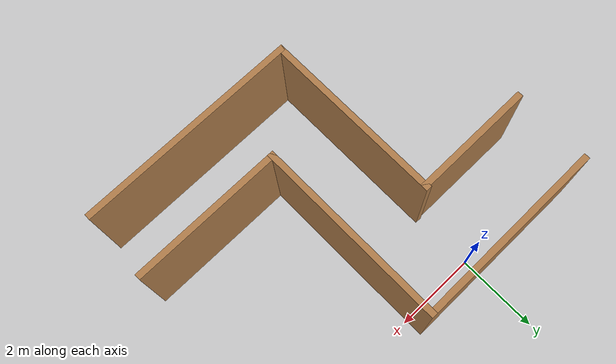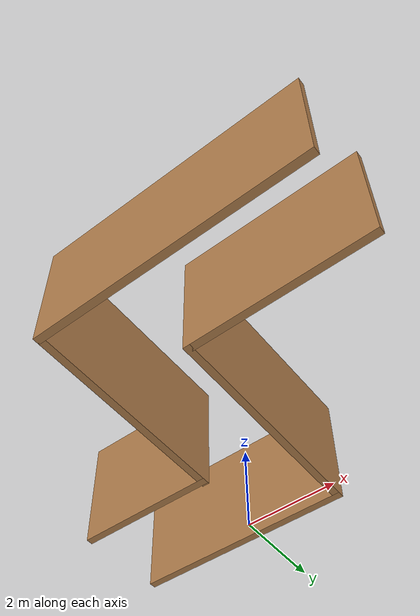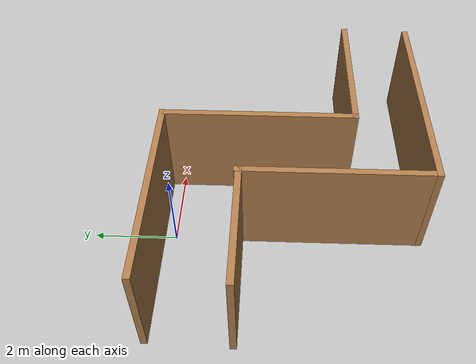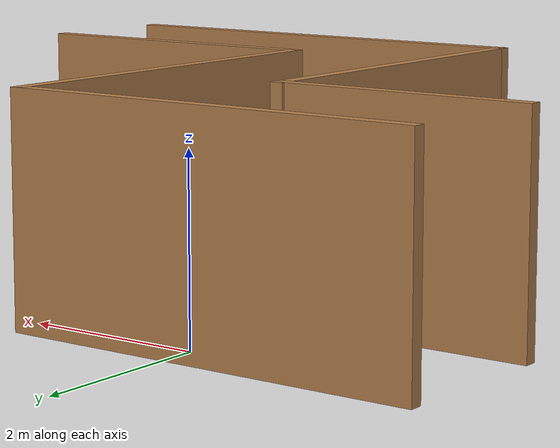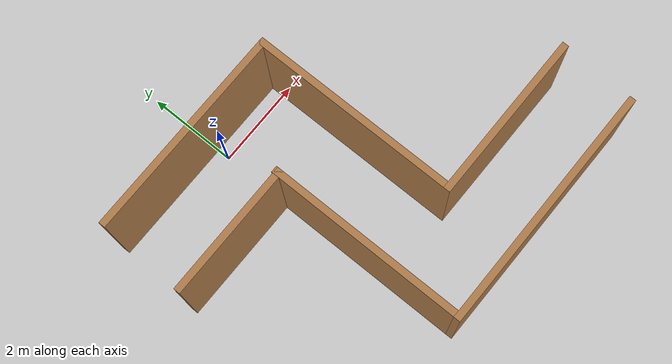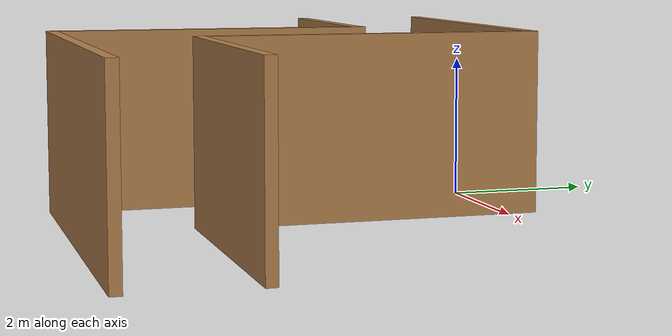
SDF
<?xml version='1.0'?>
<sdf version='1.7'>
  <model name='maze'>
    <pose>1.32132 -2.77781 0 0 -0 0</pose>
    <link name='Wall_0'>
      <collision name='Wall_0_Collision'>
        <geometry>
          <box>
            <size>3 0.15 2.5</size>
          </box>
        </geometry>
        <pose>0 0 1.25 0 -0 0</pose>
      </collision>
      <visual name='Wall_0_Visual'>
        <pose>0 0 1.25 0 -0 0</pose>
        <geometry>
          <box>
            <size>3 0.15 2.5</size>
          </box>
        </geometry>
        <material>
          <script>
            <uri>file://media/materials/scripts/gazebo.material</uri>
            <name>Gazebo/Wood</name>
          </script>
          <ambient>1 1 1 1</ambient>
        </material>
        <meta>
          <layer>0</layer>
        </meta>
      </visual>
      <pose>-2.70576 1.21782 0 0 -0 0</pose>
    </link>
    <link name='Wall_1'>
      <collision name='Wall_1_Collision'>
        <geometry>
          <box>
            <size>4.5 0.15 2.5</size>
          </box>
        </geometry>
        <pose>0 0 1.25 0 -0 0</pose>
      </collision>
      <visual name='Wall_1_Visual'>
        <pose>0 0 1.25 0 -0 0</pose>
        <geometry>
          <box>
            <size>4.5 0.15 2.5</size>
          </box>
        </geometry>
        <material>
          <script>
            <uri>file://media/materials/scripts/gazebo.material</uri>
            <name>Gazebo/Wood</name>
          </script>
          <ambient>1 1 1 1</ambient>
        </material>
        <meta>
          <layer>0</layer>
        </meta>
      </visual>
      <pose>-1.28076 -0.926595 0 0 -0 -1.5708</pose>
    </link>
    <link name='Wall_2'>
      <collision name='Wall_2_Collision'>
        <geometry>
          <box>
            <size>5.48953 0.15 2.5</size>
          </box>
        </geometry>
        <pose>0 0 1.25 0 -0 0</pose>
      </collision>
      <visual name='Wall_2_Visual'>
        <pose>0 0 1.25 0 -0 0</pose>
        <geometry>
          <box>
            <size>5.48953 0.15 2.5</size>
          </box>
        </geometry>
        <material>
          <script>
            <uri>file://media/materials/scripts/gazebo.material</uri>
            <name>Gazebo/Wood</name>
          </script>
          <ambient>1 1 1 1</ambient>
        </material>
        <meta>
          <layer>0</layer>
        </meta>
      </visual>
      <pose>1.38896 -3.13219 0 0 -0 0</pose>
    </link>
    <link name='Wall_6'>
      <collision name='Wall_6_Collision'>
        <geometry>
          <box>
            <size>4.75 0.15 2.5</size>
          </box>
        </geometry>
        <pose>0 0 1.25 0 -0 0</pose>
      </collision>
      <visual name='Wall_6_Visual'>
        <pose>0 0 1.25 0 -0 0</pose>
        <geometry>
          <box>
            <size>4.75 0.15 2.5</size>
          </box>
        </geometry>
        <material>
          <script>
            <uri>file://media/materials/scripts/gazebo.material</uri>
            <name>Gazebo/Wood</name>
          </script>
          <ambient>1 1 1 1</ambient>
        </material>
        <meta>
          <layer>0</layer>
        </meta>
      </visual>
      <pose>-1.76924 3.13219 0 0 -0 0</pose>
    </link>
    <link name='Wall_7'>
      <collision name='Wall_7_Collision'>
        <geometry>
          <box>
            <size>4.75 0.15 2.5</size>
          </box>
        </geometry>
        <pose>0 0 1.25 0 -0 0</pose>
      </collision>
      <visual name='Wall_7_Visual'>
        <pose>0 0 1.25 0 -0 0</pose>
        <geometry>
          <box>
            <size>4.75 0.15 2.5</size>
          </box>
        </geometry>
        <material>
          <script>
            <uri>file://media/materials/scripts/gazebo.material</uri>
            <name>Gazebo/Wood</name>
          </script>
          <ambient>1 1 1 1</ambient>
        </material>
        <meta>
          <layer>0</layer>
        </meta>
      </visual>
      <pose>0.530759 0.832185 0 0 -0 -1.5708</pose>
    </link>
    <link name='Wall_8'>
      <collision name='Wall_8_Collision'>
        <geometry>
          <box>
            <size>3.75 0.15 2.5</size>
          </box>
        </geometry>
        <pose>0 0 1.25 0 -0 0</pose>
      </collision>
      <visual name='Wall_8_Visual'>
        <pose>0 0 1.25 0 -0 0</pose>
        <geometry>
          <box>
            <size>3.75 0.15 2.5</size>
          </box>
        </geometry>
        <material>
          <script>
            <uri>file://media/materials/scripts/gazebo.material</uri>
            <name>Gazebo/Wood</name>
          </script>
          <ambient>1 1 1 1</ambient>
        </material>
        <meta>
          <layer>0</layer>
        </meta>
      </visual>
      <pose>2.33076 -1.46782 0 0 -0 0</pose>
    </link>
    <static>1</static>
  </model>
</sdf>
